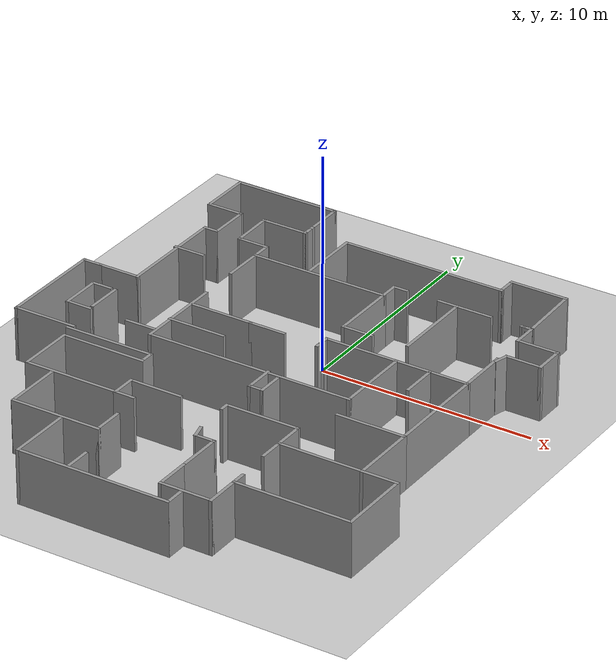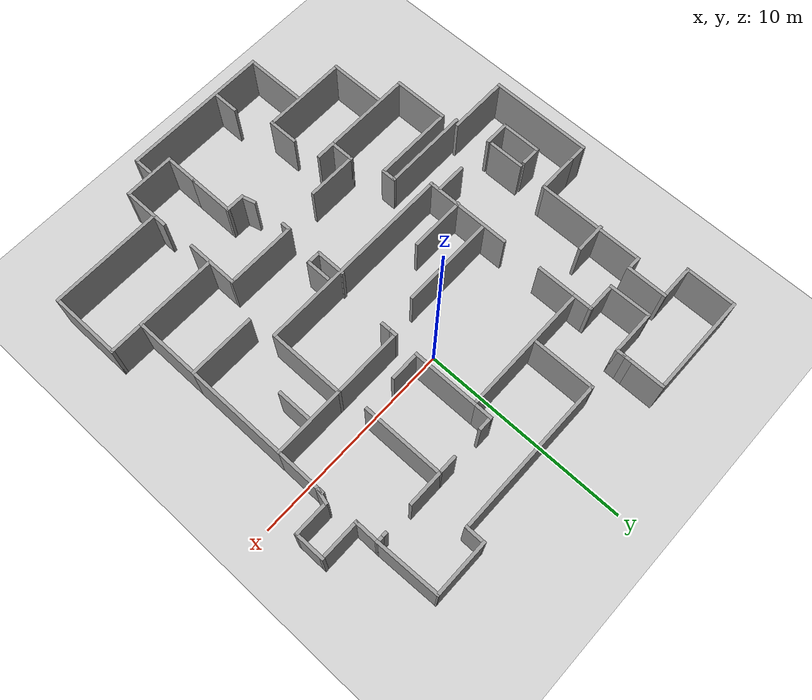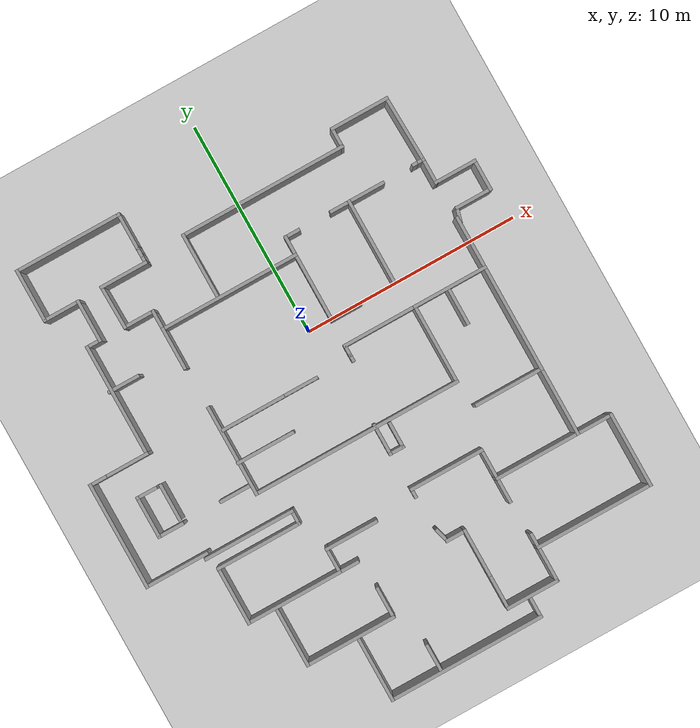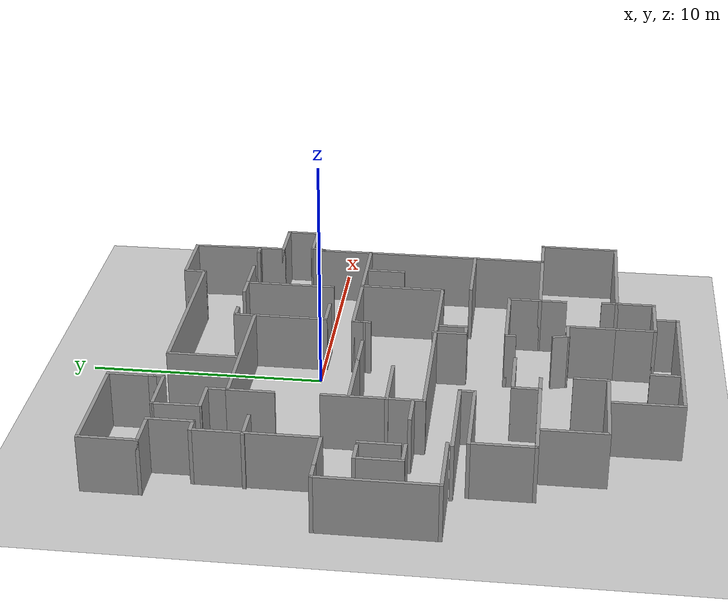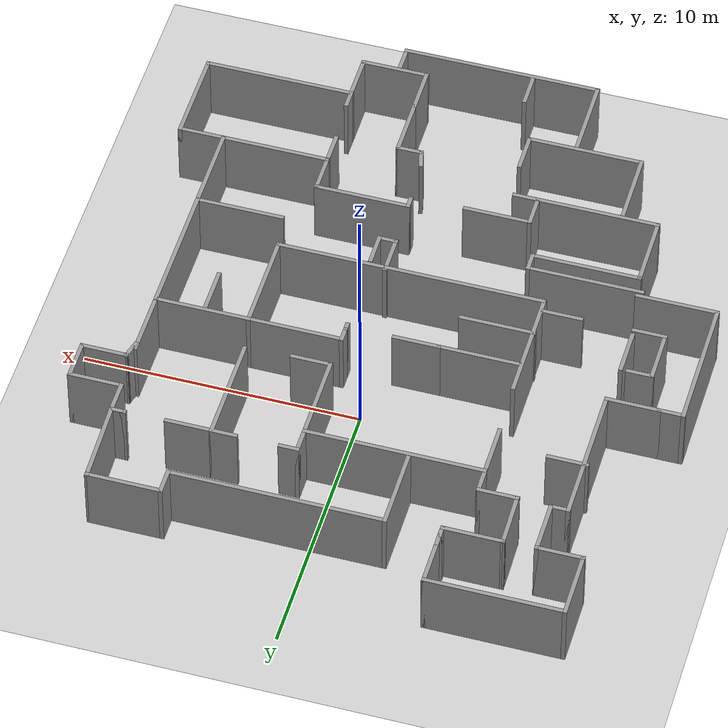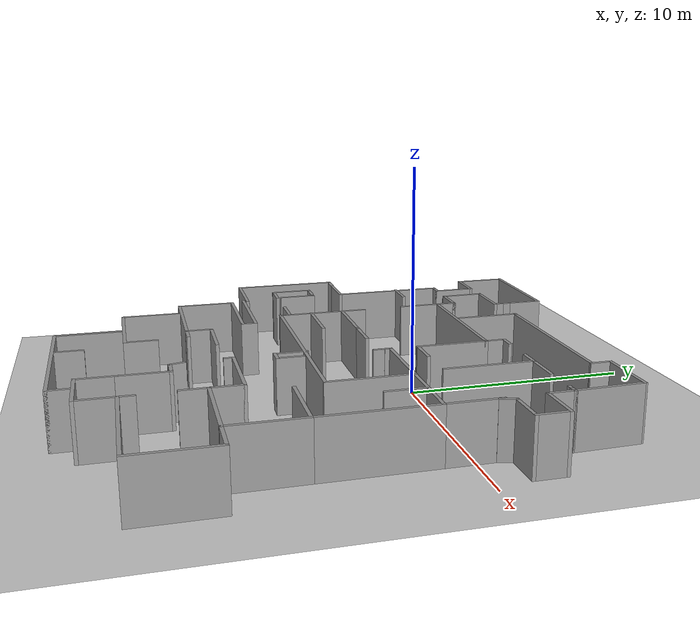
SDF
<sdf version="1.6">
 <world name="default">
  <model name="ground_plane">
   <static>1</static>
   <link name="link">
    <collision name="collision">
     <geometry><plane><normal>0 0 1</normal><size>100 100</size></plane></geometry>
     <surface>
      <contact><collide_bitmask>65535</collide_bitmask></contact>
      <friction><ode><mu>100</mu><mu2>50</mu2></ode></friction>
     </surface>
    </collision>
    <visual name="visual">
     <cast_shadows>0</cast_shadows>
     <geometry><plane><normal>0 0 1</normal><size>100 100</size></plane></geometry>
     <material>
      <script><uri>file://media/materials/scripts/gazebo.material</uri><name>Gazebo/Grey</name></script>
     </material>
    </visual>
   </link>
  </model>
  <model name="3_robot_house">
   <pose>-0.790707 -3.5377 0 0 -0 0</pose>
   <link name="Wall_10">
    <collision name="Wall_10_Collision">
     <geometry><box><size>3.5 0.15 2.5</size></box></geometry>
     <pose>0 0 1.25 0 -0 0</pose>
    </collision>
    <visual name="Wall_10_Visual">
     <pose>0 0 1.25 0 -0 0</pose>
     <geometry><box><size>3.5 0.15 2.5</size></box></geometry>
     <material>
      <script><uri>file://media/materials/scripts/gazebo.material</uri><name>Gazebo/Grey</name></script>
      <ambient>1 1 1 1</ambient>
     </material>
     <meta><layer>0</layer></meta>
    </visual>
    <pose>6.84229 2.24276 0 0 -0 0</pose>
   </link>
   <link name="Wall_100">
    <collision name="Wall_100_Collision">
     <geometry><box><size>1.75 0.15 2.5</size></box></geometry>
     <pose>0 0 1.25 0 -0 0</pose>
    </collision>
    <visual name="Wall_100_Visual">
     <pose>0 0 1.25 0 -0 0</pose>
     <geometry><box><size>1.75 0.15 2.5</size></box></geometry>
     <material>
      <script><uri>file://media/materials/scripts/gazebo.material</uri><name>Gazebo/Grey</name></script>
      <ambient>1 1 1 1</ambient>
     </material>
     <meta><layer>0</layer></meta>
    </visual>
    <pose>-7.81312 9.28629 0 0 -0 3.14159</pose>
   </link>
   <link name="Wall_101">
    <collision name="Wall_101_Collision">
     <geometry><box><size>2.5 0.15 2.5</size></box></geometry>
     <pose>0 0 1.25 0 -0 0</pose>
    </collision>
    <visual name="Wall_101_Visual">
     <pose>0 0 1.25 0 -0 0</pose>
     <geometry><box><size>2.5 0.15 2.5</size></box></geometry>
     <material>
      <script><uri>file://media/materials/scripts/gazebo.material</uri><name>Gazebo/Grey</name></script>
      <ambient>1 1 1 1</ambient>
     </material>
     <meta><layer>0</layer></meta>
    </visual>
    <pose>-8.61312 10.4613 0 0 -0 1.5708</pose>
   </link>
   <link name="Wall_102">
    <collision name="Wall_102_Collision">
     <geometry><box><size>5 0.15 2.5</size></box></geometry>
     <pose>0 0 1.25 0 -0 0</pose>
    </collision>
    <visual name="Wall_102_Visual">
     <pose>0 0 1.25 0 -0 0</pose>
     <geometry><box><size>5 0.15 2.5</size></box></geometry>
     <material>
      <script><uri>file://media/materials/scripts/gazebo.material</uri><name>Gazebo/Grey</name></script>
      <ambient>1 1 1 1</ambient>
     </material>
     <meta><layer>0</layer></meta>
    </visual>
    <pose>-6.18812 11.6363 0 0 -0 0</pose>
   </link>
   <link name="Wall_103">
    <collision name="Wall_103_Collision">
     <geometry><box><size>1.75 0.15 2.5</size></box></geometry>
     <pose>0 0 1.25 0 -0 0</pose>
    </collision>
    <visual name="Wall_103_Visual">
     <pose>0 0 1.25 0 -0 0</pose>
     <geometry><box><size>1.75 0.15 2.5</size></box></geometry>
     <material>
      <script><uri>file://media/materials/scripts/gazebo.material</uri><name>Gazebo/Grey</name></script>
      <ambient>1 1 1 1</ambient>
     </material>
     <meta><layer>0</layer></meta>
    </visual>
    <pose>-3.76312 10.8363 0 0 -0 -1.5708</pose>
   </link>
   <link name="Wall_104">
    <collision name="Wall_104_Collision">
     <geometry><box><size>0.5 0.15 2.5</size></box></geometry>
     <pose>0 0 1.25 0 -0 0</pose>
    </collision>
    <visual name="Wall_104_Visual">
     <pose>0 0 1.25 0 -0 0</pose>
     <geometry><box><size>0.5 0.15 2.5</size></box></geometry>
     <material>
      <script><uri>file://media/materials/scripts/gazebo.material</uri><name>Gazebo/Grey</name></script>
      <ambient>1 1 1 1</ambient>
     </material>
     <meta><layer>0</layer></meta>
    </visual>
    <pose>-3.76312 9.86129 0 0 -0 -1.5708</pose>
   </link>
   <link name="Wall_105">
    <collision name="Wall_105_Collision">
     <geometry><box><size>0.5 0.15 2.5</size></box></geometry>
     <pose>0 0 1.25 0 -0 0</pose>
    </collision>
    <visual name="Wall_105_Visual">
     <pose>0 0 1.25 0 -0 0</pose>
     <geometry><box><size>0.5 0.15 2.5</size></box></geometry>
     <material>
      <script><uri>file://media/materials/scripts/gazebo.material</uri><name>Gazebo/Grey</name></script>
      <ambient>1 1 1 1</ambient>
     </material>
     <meta><layer>0</layer></meta>
    </visual>
    <pose>-3.76312 9.51129 0 0 -0 -1.5708</pose>
   </link>
   <link name="Wall_106">
    <collision name="Wall_106_Collision">
     <geometry><box><size>2.25 0.15 2.5</size></box></geometry>
     <pose>0 0 1.25 0 -0 0</pose>
    </collision>
    <visual name="Wall_106_Visual">
     <pose>0 0 1.25 0 -0 0</pose>
     <geometry><box><size>2.25 0.15 2.5</size></box></geometry>
     <material>
      <script><uri>file://media/materials/scripts/gazebo.material</uri><name>Gazebo/Grey</name></script>
      <ambient>1 1 1 1</ambient>
     </material>
     <meta><layer>0</layer></meta>
    </visual>
    <pose>-4.81312 9.33629 0 0 -0 3.14159</pose>
   </link>
   <link name="Wall_107">
    <collision name="Wall_107_Collision">
     <geometry><box><size>2.08097 0.15 2.5</size></box></geometry>
     <pose>0 0 1.25 0 -0 0</pose>
    </collision>
    <visual name="Wall_107_Visual">
     <pose>0 0 1.25 0 -0 0</pose>
     <geometry><box><size>2.08097 0.15 2.5</size></box></geometry>
     <material>
      <script><uri>file://media/materials/scripts/gazebo.material</uri><name>Gazebo/Grey</name></script>
      <ambient>1 1 1 1</ambient>
     </material>
     <meta><layer>0</layer></meta>
    </visual>
    <pose>-5.84716 8.37094 0 0 -0 -1.55427</pose>
   </link>
   <link name="Wall_11">
    <collision name="Wall_11_Collision">
     <geometry><box><size>5 0.15 2.5</size></box></geometry>
     <pose>0 0 1.25 0 -0 0</pose>
    </collision>
    <visual name="Wall_11_Visual">
     <pose>0 0 1.25 0 -0 0</pose>
     <geometry><box><size>5 0.15 2.5</size></box></geometry>
     <material>
      <script><uri>file://media/materials/scripts/gazebo.material</uri><name>Gazebo/Grey</name></script>
      <ambient>1 1 1 1</ambient>
     </material>
     <meta><layer>0</layer></meta>
    </visual>
    <pose>8.51729 -0.182235 0 0 -0 -1.5708</pose>
   </link>
   <link name="Wall_110">
    <collision name="Wall_110_Collision">
     <geometry><box><size>3 0.15 2.5</size></box></geometry>
     <pose>0 0 1.25 0 -0 0</pose>
    </collision>
    <visual name="Wall_110_Visual">
     <pose>0 0 1.25 0 -0 0</pose>
     <geometry><box><size>3 0.15 2.5</size></box></geometry>
     <material>
      <script><uri>file://media/materials/scripts/gazebo.material</uri><name>Gazebo/Grey</name></script>
      <ambient>1 1 1 1</ambient>
     </material>
     <meta><layer>0</layer></meta>
    </visual>
    <pose>-1.82806 8.13443 0 0 -0 1.5708</pose>
   </link>
   <link name="Wall_111">
    <collision name="Wall_111_Collision">
     <geometry><box><size>7.75 0.15 2.5</size></box></geometry>
     <pose>0 0 1.25 0 -0 0</pose>
    </collision>
    <visual name="Wall_111_Visual">
     <pose>0 0 1.25 0 -0 0</pose>
     <geometry><box><size>7.75 0.15 2.5</size></box></geometry>
     <material>
      <script><uri>file://media/materials/scripts/gazebo.material</uri><name>Gazebo/Grey</name></script>
      <ambient>1 1 1 1</ambient>
     </material>
     <meta><layer>0</layer></meta>
    </visual>
    <pose>1.97194 9.55943 0 0 -0 0</pose>
   </link>
   <link name="Wall_112">
    <collision name="Wall_112_Collision">
     <geometry><box><size>1 0.15 2.5</size></box></geometry>
     <pose>0 0 1.25 0 -0 0</pose>
    </collision>
    <visual name="Wall_112_Visual">
     <pose>0 0 1.25 0 -0 0</pose>
     <geometry><box><size>1 0.15 2.5</size></box></geometry>
     <material>
      <script><uri>file://media/materials/scripts/gazebo.material</uri><name>Gazebo/Grey</name></script>
      <ambient>1 1 1 1</ambient>
     </material>
     <meta><layer>0</layer></meta>
    </visual>
    <pose>5.77194 9.98443 0 0 -0 1.5708</pose>
   </link>
   <link name="Wall_113">
    <collision name="Wall_113_Collision">
     <geometry><box><size>2.75 0.15 2.5</size></box></geometry>
     <pose>0 0 1.25 0 -0 0</pose>
    </collision>
    <visual name="Wall_113_Visual">
     <pose>0 0 1.25 0 -0 0</pose>
     <geometry><box><size>2.75 0.15 2.5</size></box></geometry>
     <material>
      <script><uri>file://media/materials/scripts/gazebo.material</uri><name>Gazebo/Grey</name></script>
      <ambient>1 1 1 1</ambient>
     </material>
     <meta><layer>0</layer></meta>
    </visual>
    <pose>7.07194 10.4094 0 0 -0 0</pose>
   </link>
   <link name="Wall_114">
    <collision name="Wall_114_Collision">
     <geometry><box><size>3.12453 0.15 2.5</size></box></geometry>
     <pose>0 0 1.25 0 -0 0</pose>
    </collision>
    <visual name="Wall_114_Visual">
     <pose>0 0 1.25 0 -0 0</pose>
     <geometry><box><size>3.12453 0.15 2.5</size></box></geometry>
     <material>
      <script><uri>file://media/materials/scripts/gazebo.material</uri><name>Gazebo/Grey</name></script>
      <ambient>1 1 1 1</ambient>
     </material>
     <meta><layer>0</layer></meta>
    </visual>
    <pose>8.41753 8.92286 0 0 -0 -1.54014</pose>
   </link>
   <link name="Wall_116">
    <collision name="Wall_116_Collision">
     <geometry><box><size>2.75 0.15 2.5</size></box></geometry>
     <pose>0 0 1.25 0 -0 0</pose>
    </collision>
    <visual name="Wall_116_Visual">
     <pose>0 0 1.25 0 -0 0</pose>
     <geometry><box><size>2.75 0.15 2.5</size></box></geometry>
     <material>
      <script><uri>file://media/materials/scripts/gazebo.material</uri><name>Gazebo/Grey</name></script>
      <ambient>1 1 1 1</ambient>
     </material>
     <meta><layer>0</layer></meta>
    </visual>
    <pose>-3.16495 0.140335 0 0 -0 0</pose>
   </link>
   <link name="Wall_118">
    <collision name="Wall_118_Collision">
     <geometry><box><size>1.5 0.15 2.5</size></box></geometry>
     <pose>0 0 1.25 0 -0 0</pose>
    </collision>
    <visual name="Wall_118_Visual">
     <pose>0 0 1.25 0 -0 0</pose>
     <geometry><box><size>1.5 0.15 2.5</size></box></geometry>
     <material>
      <script><uri>file://media/materials/scripts/gazebo.material</uri><name>Gazebo/Grey</name></script>
      <ambient>1 1 1 1</ambient>
     </material>
     <meta><layer>0</layer></meta>
    </visual>
    <pose>-7.03744 5.35622 0 0 -0 0</pose>
   </link>
   <link name="Wall_12">
    <collision name="Wall_12_Collision">
     <geometry><box><size>3.25 0.15 2.5</size></box></geometry>
     <pose>0 0 1.25 0 -0 0</pose>
    </collision>
    <visual name="Wall_12_Visual">
     <pose>0 0 1.25 0 -0 0</pose>
     <geometry><box><size>3.25 0.15 2.5</size></box></geometry>
     <material>
      <script><uri>file://media/materials/scripts/gazebo.material</uri><name>Gazebo/Grey</name></script>
      <ambient>1 1 1 1</ambient>
     </material>
     <meta><layer>0</layer></meta>
    </visual>
    <pose>6.96729 -2.60723 0 0 -0 3.14159</pose>
   </link>
   <link name="Wall_120">
    <collision name="Wall_120_Collision">
     <geometry><box><size>1.5 0.15 2.5</size></box></geometry>
     <pose>0 0 1.25 0 -0 0</pose>
    </collision>
    <visual name="Wall_120_Visual">
     <pose>0 0 1.25 0 -0 0</pose>
     <geometry><box><size>1.5 0.15 2.5</size></box></geometry>
     <material>
      <script><uri>file://media/materials/scripts/gazebo.material</uri><name>Gazebo/Grey</name></script>
      <ambient>1 1 1 1</ambient>
     </material>
     <meta><layer>0</layer></meta>
    </visual>
    <pose>-5.19542 -0.921429 0 0 -0 3.14159</pose>
   </link>
   <link name="Wall_123">
    <collision name="Wall_123_Collision">
     <geometry><box><size>1.75 0.15 2.5</size></box></geometry>
     <pose>0 0 1.25 0 -0 0</pose>
    </collision>
    <visual name="Wall_123_Visual">
     <pose>0 0 1.25 0 -0 0</pose>
     <geometry><box><size>1.75 0.15 2.5</size></box></geometry>
     <material>
      <script><uri>file://media/materials/scripts/gazebo.material</uri><name>Gazebo/Grey</name></script>
      <ambient>1 1 1 1</ambient>
     </material>
     <meta><layer>0</layer></meta>
    </visual>
    <pose>6.75807 1.36419 0 0 -0 -1.5708</pose>
   </link>
   <link name="Wall_125">
    <collision name="Wall_125_Collision">
     <geometry><box><size>1.25 0.15 2.5</size></box></geometry>
     <pose>0 0 1.25 0 -0 0</pose>
    </collision>
    <visual name="Wall_125_Visual">
     <pose>0 0 1.25 0 -0 0</pose>
     <geometry><box><size>1.25 0.15 2.5</size></box></geometry>
     <material>
      <script><uri>file://media/materials/scripts/gazebo.material</uri><name>Gazebo/Grey</name></script>
      <ambient>1 1 1 1</ambient>
     </material>
     <meta><layer>0</layer></meta>
    </visual>
    <pose>-1.30031 -10.9461 0 0 -0 1.5708</pose>
   </link>
   <link name="Wall_127">
    <collision name="Wall_127_Collision">
     <geometry><box><size>1.5 0.15 2.5</size></box></geometry>
     <pose>0 0 1.25 0 -0 0</pose>
    </collision>
    <visual name="Wall_127_Visual">
     <pose>0 0 1.25 0 -0 0</pose>
     <geometry><box><size>1.5 0.15 2.5</size></box></geometry>
     <material>
      <script><uri>file://media/materials/scripts/gazebo.material</uri><name>Gazebo/Grey</name></script>
      <ambient>1 1 1 1</ambient>
     </material>
     <meta><layer>0</layer></meta>
    </visual>
    <pose>1.26927 -1.95397 0 0 -0 -1.5708</pose>
   </link>
   <link name="Wall_128">
    <collision name="Wall_128_Collision">
     <geometry><box><size>0.75 0.15 2.5</size></box></geometry>
     <pose>0 0 1.25 0 -0 0</pose>
    </collision>
    <visual name="Wall_128_Visual">
     <pose>0 0 1.25 0 -0 0</pose>
     <geometry><box><size>0.75 0.15 2.5</size></box></geometry>
     <material>
      <script><uri>file://media/materials/scripts/gazebo.material</uri><name>Gazebo/Grey</name></script>
      <ambient>1 1 1 1</ambient>
     </material>
     <meta><layer>0</layer></meta>
    </visual>
    <pose>1.56927 -2.62897 0 0 -0 0</pose>
   </link>
   <link name="Wall_129">
    <collision name="Wall_129_Collision">
     <geometry><box><size>1.25 0.15 2.5</size></box></geometry>
     <pose>0 0 1.25 0 -0 0</pose>
    </collision>
    <visual name="Wall_129_Visual">
     <pose>0 0 1.25 0 -0 0</pose>
     <geometry><box><size>1.25 0.15 2.5</size></box></geometry>
     <material>
      <script><uri>file://media/materials/scripts/gazebo.material</uri><name>Gazebo/Grey</name></script>
      <ambient>1 1 1 1</ambient>
     </material>
     <meta><layer>0</layer></meta>
    </visual>
    <pose>1.86927 -2.07897 0 0 -0 1.5708</pose>
   </link>
   <link name="Wall_131">
    <collision name="Wall_131_Collision">
     <geometry><box><size>2 0.15 2.5</size></box></geometry>
     <pose>0 0 1.25 0 -0 0</pose>
    </collision>
    <visual name="Wall_131_Visual">
     <pose>0 0 1.25 0 -0 0</pose>
     <geometry><box><size>2 0.15 2.5</size></box></geometry>
     <material>
      <script><uri>file://media/materials/scripts/gazebo.material</uri><name>Gazebo/Grey</name></script>
      <ambient>1 1 1 1</ambient>
     </material>
     <meta><layer>0</layer></meta>
    </visual>
    <pose>9.38812 6.33629 0 0 -0 0</pose>
   </link>
   <link name="Wall_132">
    <collision name="Wall_132_Collision">
     <geometry><box><size>1.5 0.15 2.5</size></box></geometry>
     <pose>0 0 1.25 0 -0 0</pose>
    </collision>
    <visual name="Wall_132_Visual">
     <pose>0 0 1.25 0 -0 0</pose>
     <geometry><box><size>1.5 0.15 2.5</size></box></geometry>
     <material>
      <script><uri>file://media/materials/scripts/gazebo.material</uri><name>Gazebo/Grey</name></script>
      <ambient>1 1 1 1</ambient>
     </material>
     <meta><layer>0</layer></meta>
    </visual>
    <pose>10.3131 5.66129 0 0 -0 -1.5708</pose>
   </link>
   <link name="Wall_133">
    <collision name="Wall_133_Collision">
     <geometry><box><size>1.75 0.15 2.5</size></box></geometry>
     <pose>0 0 1.25 0 -0 0</pose>
    </collision>
    <visual name="Wall_133_Visual">
     <pose>0 0 1.25 0 -0 0</pose>
     <geometry><box><size>1.75 0.15 2.5</size></box></geometry>
     <material>
      <script><uri>file://media/materials/scripts/gazebo.material</uri><name>Gazebo/Grey</name></script>
      <ambient>1 1 1 1</ambient>
     </material>
     <meta><layer>0</layer></meta>
    </visual>
    <pose>9.51312 4.98629 0 0 -0 3.14159</pose>
   </link>
   <link name="Wall_134">
    <collision name="Wall_134_Collision">
     <geometry><box><size>0.75 0.15 2.5</size></box></geometry>
     <pose>0 0 1.25 0 -0 0</pose>
    </collision>
    <visual name="Wall_134_Visual">
     <pose>0 0 1.25 0 -0 0</pose>
     <geometry><box><size>0.75 0.15 2.5</size></box></geometry>
     <material>
      <script><uri>file://media/materials/scripts/gazebo.material</uri><name>Gazebo/Grey</name></script>
      <ambient>1 1 1 1</ambient>
     </material>
     <meta><layer>0</layer></meta>
    </visual>
    <pose>8.63548 4.69651 0 0 -0 -1.8326</pose>
   </link>
   <link name="Wall_136">
    <collision name="Wall_136_Collision">
     <geometry><box><size>2 0.15 2.5</size></box></geometry>
     <pose>0 0 1.25 0 -0 0</pose>
    </collision>
    <visual name="Wall_136_Visual">
     <pose>0 0 1.25 0 -0 0</pose>
     <geometry><box><size>2 0.15 2.5</size></box></geometry>
     <material>
      <script><uri>file://media/materials/scripts/gazebo.material</uri><name>Gazebo/Grey</name></script>
      <ambient>1 1 1 1</ambient>
     </material>
     <meta><layer>0</layer></meta>
    </visual>
    <pose>-8.53812 2.33629 0 0 -0 3.14159</pose>
   </link>
   <link name="Wall_137">
    <collision name="Wall_137_Collision">
     <geometry><box><size>1 0.15 2.5</size></box></geometry>
     <pose>0 0 1.25 0 -0 0</pose>
    </collision>
    <visual name="Wall_137_Visual">
     <pose>0 0 1.25 0 -0 0</pose>
     <geometry><box><size>1 0.15 2.5</size></box></geometry>
     <material>
      <script><uri>file://media/materials/scripts/gazebo.material</uri><name>Gazebo/Grey</name></script>
      <ambient>1 1 1 1</ambient>
     </material>
     <meta><layer>0</layer></meta>
    </visual>
    <pose>-9.88812 2.33629 0 0 -0 3.14159</pose>
   </link>
   <link name="Wall_138">
    <collision name="Wall_138_Collision">
     <geometry><box><size>5 0.15 2.5</size></box></geometry>
     <pose>0 0 1.25 0 -0 0</pose>
    </collision>
    <visual name="Wall_138_Visual">
     <pose>0 0 1.25 0 -0 0</pose>
     <geometry><box><size>5 0.15 2.5</size></box></geometry>
     <material>
      <script><uri>file://media/materials/scripts/gazebo.material</uri><name>Gazebo/Grey</name></script>
      <ambient>1 1 1 1</ambient>
     </material>
     <meta><layer>0</layer></meta>
    </visual>
    <pose>-10.3131 -0.088708 0 0 -0 -1.5708</pose>
   </link>
   <link name="Wall_139">
    <collision name="Wall_139_Collision">
     <geometry><box><size>3 0.15 2.5</size></box></geometry>
     <pose>0 0 1.25 0 -0 0</pose>
    </collision>
    <visual name="Wall_139_Visual">
     <pose>0 0 1.25 0 -0 0</pose>
     <geometry><box><size>3 0.15 2.5</size></box></geometry>
     <material>
      <script><uri>file://media/materials/scripts/gazebo.material</uri><name>Gazebo/Grey</name></script>
      <ambient>1 1 1 1</ambient>
     </material>
     <meta><layer>0</layer></meta>
    </visual>
    <pose>-8.88812 -2.51371 0 0 -0 0</pose>
   </link>
   <link name="Wall_14">
    <collision name="Wall_14_Collision">
     <geometry><box><size>2 0.15 2.5</size></box></geometry>
     <pose>0 0 1.25 0 -0 0</pose>
    </collision>
    <visual name="Wall_14_Visual">
     <pose>0 0 1.25 0 -0 0</pose>
     <geometry><box><size>2 0.15 2.5</size></box></geometry>
     <material>
      <script><uri>file://media/materials/scripts/gazebo.material</uri><name>Gazebo/Grey</name></script>
      <ambient>1 1 1 1</ambient>
     </material>
     <meta><layer>0</layer></meta>
    </visual>
    <pose>-4.4812 5.63059 0 0 -0 1.5708</pose>
   </link>
   <link name="Wall_141">
    <collision name="Wall_141_Collision">
     <geometry><box><size>1.75 0.15 2.5</size></box></geometry>
     <pose>0 0 1.25 0 -0 0</pose>
    </collision>
    <visual name="Wall_141_Visual">
     <pose>0 0 1.25 0 -0 0</pose>
     <geometry><box><size>1.75 0.15 2.5</size></box></geometry>
     <material>
      <script><uri>file://media/materials/scripts/gazebo.material</uri><name>Gazebo/Grey</name></script>
      <ambient>1 1 1 1</ambient>
     </material>
     <meta><layer>0</layer></meta>
    </visual>
    <pose>-7.74892 0.090357 0 0 -0 -1.5708</pose>
   </link>
   <link name="Wall_143">
    <collision name="Wall_143_Collision">
     <geometry><box><size>1 0.15 2.5</size></box></geometry>
     <pose>0 0 1.25 0 -0 0</pose>
    </collision>
    <visual name="Wall_143_Visual">
     <pose>0 0 1.25 0 -0 0</pose>
     <geometry><box><size>1 0.15 2.5</size></box></geometry>
     <material>
      <script><uri>file://media/materials/scripts/gazebo.material</uri><name>Gazebo/Grey</name></script>
      <ambient>1 1 1 1</ambient>
     </material>
     <meta><layer>0</layer></meta>
    </visual>
    <pose>-8.42629 0.91147 0 0 -0 3.14159</pose>
   </link>
   <link name="Wall_144">
    <collision name="Wall_144_Collision">
     <geometry><box><size>2 0.15 2.5</size></box></geometry>
     <pose>0 0 1.25 0 -0 0</pose>
    </collision>
    <visual name="Wall_144_Visual">
     <pose>0 0 1.25 0 -0 0</pose>
     <geometry><box><size>2 0.15 2.5</size></box></geometry>
     <material>
      <script><uri>file://media/materials/scripts/gazebo.material</uri><name>Gazebo/Grey</name></script>
      <ambient>1 1 1 1</ambient>
     </material>
     <meta><layer>0</layer></meta>
    </visual>
    <pose>-8.85129 -0.01353 0 0 -0 -1.5708</pose>
   </link>
   <link name="Wall_145">
    <collision name="Wall_145_Collision">
     <geometry><box><size>1.25 0.15 2.5</size></box></geometry>
     <pose>0 0 1.25 0 -0 0</pose>
    </collision>
    <visual name="Wall_145_Visual">
     <pose>0 0 1.25 0 -0 0</pose>
     <geometry><box><size>1.25 0.15 2.5</size></box></geometry>
     <material>
      <script><uri>file://media/materials/scripts/gazebo.material</uri><name>Gazebo/Grey</name></script>
      <ambient>1 1 1 1</ambient>
     </material>
     <meta><layer>0</layer></meta>
    </visual>
    <pose>-8.30129 -0.93853 0 0 -0 0</pose>
   </link>
   <link name="Wall_15">
    <collision name="Wall_15_Collision">
     <geometry><box><size>6.5 0.15 2.5</size></box></geometry>
     <pose>0 0 1.25 0 -0 0</pose>
    </collision>
    <visual name="Wall_15_Visual">
     <pose>0 0 1.25 0 -0 0</pose>
     <geometry><box><size>6.5 0.15 2.5</size></box></geometry>
     <material>
      <script><uri>file://media/materials/scripts/gazebo.material</uri><name>Gazebo/Grey</name></script>
      <ambient>1 1 1 1</ambient>
     </material>
     <meta><layer>0</layer></meta>
    </visual>
    <pose>-1.3062 6.55559 0 0 -0 0</pose>
   </link>
   <link name="Wall_16">
    <collision name="Wall_16_Collision">
     <geometry><box><size>1 0.15 2.5</size></box></geometry>
     <pose>0 0 1.25 0 -0 0</pose>
    </collision>
    <visual name="Wall_16_Visual">
     <pose>0 0 1.25 0 -0 0</pose>
     <geometry><box><size>1 0.15 2.5</size></box></geometry>
     <material>
      <script><uri>file://media/materials/scripts/gazebo.material</uri><name>Gazebo/Grey</name></script>
      <ambient>1 1 1 1</ambient>
     </material>
     <meta><layer>0</layer></meta>
    </visual>
    <pose>1.8688 6.98059 0 0 -0 1.5708</pose>
   </link>
   <link name="Wall_17">
    <collision name="Wall_17_Collision">
     <geometry><box><size>0.75 0.15 2.5</size></box></geometry>
     <pose>0 0 1.25 0 -0 0</pose>
    </collision>
    <visual name="Wall_17_Visual">
     <pose>0 0 1.25 0 -0 0</pose>
     <geometry><box><size>0.75 0.15 2.5</size></box></geometry>
     <material>
      <script><uri>file://media/materials/scripts/gazebo.material</uri><name>Gazebo/Grey</name></script>
      <ambient>1 1 1 1</ambient>
     </material>
     <meta><layer>0</layer></meta>
    </visual>
    <pose>2.1688 7.40559 0 0 -0 0</pose>
   </link>
   <link name="Wall_22">
    <collision name="Wall_22_Collision">
     <geometry><box><size>1 0.15 2.5</size></box></geometry>
     <pose>0 0 1.25 0 -0 0</pose>
    </collision>
    <visual name="Wall_22_Visual">
     <pose>0 0 1.25 0 -0 0</pose>
     <geometry><box><size>1 0.15 2.5</size></box></geometry>
     <material>
      <script><uri>file://media/materials/scripts/gazebo.material</uri><name>Gazebo/Grey</name></script>
      <ambient>1 1 1 1</ambient>
     </material>
     <meta><layer>0</layer></meta>
    </visual>
    <pose>4.48385 7.40587 0 0 -0 0</pose>
   </link>
   <link name="Wall_23">
    <collision name="Wall_23_Collision">
     <geometry><box><size>4 0.15 2.5</size></box></geometry>
     <pose>0 0 1.25 0 -0 0</pose>
    </collision>
    <visual name="Wall_23_Visual">
     <pose>0 0 1.25 0 -0 0</pose>
     <geometry><box><size>4 0.15 2.5</size></box></geometry>
     <material>
      <script><uri>file://media/materials/scripts/gazebo.material</uri><name>Gazebo/Grey</name></script>
      <ambient>1 1 1 1</ambient>
     </material>
     <meta><layer>0</layer></meta>
    </visual>
    <pose>4.90885 5.48087 0 0 -0 -1.5708</pose>
   </link>
   <link name="Wall_25">
    <collision name="Wall_25_Collision">
     <geometry><box><size>1.75 0.15 2.5</size></box></geometry>
     <pose>0 0 1.25 0 -0 0</pose>
    </collision>
    <visual name="Wall_25_Visual">
     <pose>0 0 1.25 0 -0 0</pose>
     <geometry><box><size>1.75 0.15 2.5</size></box></geometry>
     <material>
      <script><uri>file://media/materials/scripts/gazebo.material</uri><name>Gazebo/Grey</name></script>
      <ambient>1 1 1 1</ambient>
     </material>
     <meta><layer>0</layer></meta>
    </visual>
    <pose>5.70885 7.40587 0 0 -0 0</pose>
   </link>
   <link name="Wall_27">
    <collision name="Wall_27_Collision">
     <geometry><box><size>0.25 0.15 2.5</size></box></geometry>
     <pose>0 0 1.25 0 -0 0</pose>
    </collision>
    <visual name="Wall_27_Visual">
     <pose>0 0 1.25 0 -0 0</pose>
     <geometry><box><size>0.25 0.15 2.5</size></box></geometry>
     <material>
      <script><uri>file://media/materials/scripts/gazebo.material</uri><name>Gazebo/Grey</name></script>
      <ambient>1 1 1 1</ambient>
     </material>
     <meta><layer>0</layer></meta>
    </visual>
    <pose>8.06312 7.43629 0 0 -0 0</pose>
   </link>
   <link name="Wall_28">
    <collision name="Wall_28_Collision">
     <geometry><box><size>0.5 0.15 2.5</size></box></geometry>
     <pose>0 0 1.25 0 -0 0</pose>
    </collision>
    <visual name="Wall_28_Visual">
     <pose>0 0 1.25 0 -0 0</pose>
     <geometry><box><size>0.5 0.15 2.5</size></box></geometry>
     <material>
      <script><uri>file://media/materials/scripts/gazebo.material</uri><name>Gazebo/Grey</name></script>
      <ambient>1 1 1 1</ambient>
     </material>
     <meta><layer>0</layer></meta>
    </visual>
    <pose>8.28812 7.43629 0 0 -0 0</pose>
   </link>
   <link name="Wall_29">
    <collision name="Wall_29_Collision">
     <geometry><box><size>1.25 0.15 2.5</size></box></geometry>
     <pose>0 0 1.25 0 -0 0</pose>
    </collision>
    <visual name="Wall_29_Visual">
     <pose>0 0 1.25 0 -0 0</pose>
     <geometry><box><size>1.25 0.15 2.5</size></box></geometry>
     <material>
      <script><uri>file://media/materials/scripts/gazebo.material</uri><name>Gazebo/Grey</name></script>
      <ambient>1 1 1 1</ambient>
     </material>
     <meta><layer>0</layer></meta>
    </visual>
    <pose>8.46312 6.88629 0 0 -0 -1.5708</pose>
   </link>
   <link name="Wall_3">
    <collision name="Wall_3_Collision">
     <geometry><box><size>1.75 0.15 2.5</size></box></geometry>
     <pose>0 0 1.25 0 -0 0</pose>
    </collision>
    <visual name="Wall_3_Visual">
     <pose>0 0 1.25 0 -0 0</pose>
     <geometry><box><size>1.75 0.15 2.5</size></box></geometry>
     <material>
      <script><uri>file://media/materials/scripts/gazebo.material</uri><name>Gazebo/Grey</name></script>
      <ambient>1 1 1 1</ambient>
     </material>
     <meta><layer>0</layer></meta>
    </visual>
    <pose>-0.688706 1.64962 0 0 -0 3.14159</pose>
   </link>
   <link name="Wall_31">
    <collision name="Wall_31_Collision">
     <geometry><box><size>2.5 0.15 2.5</size></box></geometry>
     <pose>0 0 1.25 0 -0 0</pose>
    </collision>
    <visual name="Wall_31_Visual">
     <pose>0 0 1.25 0 -0 0</pose>
     <geometry><box><size>2.5 0.15 2.5</size></box></geometry>
     <material>
      <script><uri>file://media/materials/scripts/gazebo.material</uri><name>Gazebo/Grey</name></script>
      <ambient>1 1 1 1</ambient>
     </material>
     <meta><layer>0</layer></meta>
    </visual>
    <pose>8.51729 3.41777 0 0 -0 1.5708</pose>
   </link>
   <link name="Wall_33">
    <collision name="Wall_33_Collision">
     <geometry><box><size>3.25 0.15 2.5</size></box></geometry>
     <pose>0 0 1.25 0 -0 0</pose>
    </collision>
    <visual name="Wall_33_Visual">
     <pose>0 0 1.25 0 -0 0</pose>
     <geometry><box><size>3.25 0.15 2.5</size></box></geometry>
     <material>
      <script><uri>file://media/materials/scripts/gazebo.material</uri><name>Gazebo/Grey</name></script>
      <ambient>1 1 1 1</ambient>
     </material>
     <meta><layer>0</layer></meta>
    </visual>
    <pose>1.8688 5.00559 0 0 -0 -1.5708</pose>
   </link>
   <link name="Wall_34">
    <collision name="Wall_34_Collision">
     <geometry><box><size>1.5 0.15 2.5</size></box></geometry>
     <pose>0 0 1.25 0 -0 0</pose>
    </collision>
    <visual name="Wall_34_Visual">
     <pose>0 0 1.25 0 -0 0</pose>
     <geometry><box><size>1.5 0.15 2.5</size></box></geometry>
     <material>
      <script><uri>file://media/materials/scripts/gazebo.material</uri><name>Gazebo/Grey</name></script>
      <ambient>1 1 1 1</ambient>
     </material>
     <meta><layer>0</layer></meta>
    </visual>
    <pose>2.5438 3.45559 0 0 -0 0</pose>
   </link>
   <link name="Wall_36">
    <collision name="Wall_36_Collision">
     <geometry><box><size>3.5 0.15 2.5</size></box></geometry>
     <pose>0 0 1.25 0 -0 0</pose>
    </collision>
    <visual name="Wall_36_Visual">
     <pose>0 0 1.25 0 -0 0</pose>
     <geometry><box><size>3.5 0.15 2.5</size></box></geometry>
     <material>
      <script><uri>file://media/materials/scripts/gazebo.material</uri><name>Gazebo/Grey</name></script>
      <ambient>1 1 1 1</ambient>
     </material>
     <meta><layer>0</layer></meta>
    </visual>
    <pose>3.49229 2.24276 0 0 -0 3.14159</pose>
   </link>
   <link name="Wall_37">
    <collision name="Wall_37_Collision">
     <geometry><box><size>0.5 0.15 2.5</size></box></geometry>
     <pose>0 0 1.25 0 -0 0</pose>
    </collision>
    <visual name="Wall_37_Visual">
     <pose>0 0 1.25 0 -0 0</pose>
     <geometry><box><size>0.5 0.15 2.5</size></box></geometry>
     <material>
      <script><uri>file://media/materials/scripts/gazebo.material</uri><name>Gazebo/Grey</name></script>
      <ambient>1 1 1 1</ambient>
     </material>
     <meta><layer>0</layer></meta>
    </visual>
    <pose>1.81729 2.06777 0 0 -0 -1.5708</pose>
   </link>
   <link name="Wall_39">
    <collision name="Wall_39_Collision">
     <geometry><box><size>0.25 0.15 2.5</size></box></geometry>
     <pose>0 0 1.25 0 -0 0</pose>
    </collision>
    <visual name="Wall_39_Visual">
     <pose>0 0 1.25 0 -0 0</pose>
     <geometry><box><size>0.25 0.15 2.5</size></box></geometry>
     <material>
      <script><uri>file://media/materials/scripts/gazebo.material</uri><name>Gazebo/Grey</name></script>
      <ambient>1 1 1 1</ambient>
     </material>
     <meta><layer>0</layer></meta>
    </visual>
    <pose>1.81729 1.84276 0 0 -0 -1.5708</pose>
   </link>
   <link name="Wall_41">
    <collision name="Wall_41_Collision">
     <geometry><box><size>0.5 0.15 2.5</size></box></geometry>
     <pose>0 0 1.25 0 -0 0</pose>
    </collision>
    <visual name="Wall_41_Visual">
     <pose>0 0 1.25 0 -0 0</pose>
     <geometry><box><size>0.5 0.15 2.5</size></box></geometry>
     <material>
      <script><uri>file://media/materials/scripts/gazebo.material</uri><name>Gazebo/Grey</name></script>
      <ambient>1 1 1 1</ambient>
     </material>
     <meta><layer>0</layer></meta>
    </visual>
    <pose>1.81729 1.71776 0 0 -0 -1.5708</pose>
   </link>
   <link name="Wall_43">
    <collision name="Wall_43_Collision">
     <geometry><box><size>1 0.15 2.5</size></box></geometry>
     <pose>0 0 1.25 0 -0 0</pose>
    </collision>
    <visual name="Wall_43_Visual">
     <pose>0 0 1.25 0 -0 0</pose>
     <geometry><box><size>1 0.15 2.5</size></box></geometry>
     <material>
      <script><uri>file://media/materials/scripts/gazebo.material</uri><name>Gazebo/Grey</name></script>
      <ambient>1 1 1 1</ambient>
     </material>
     <meta><layer>0</layer></meta>
    </visual>
    <pose>-4.4812 6.98059 0 0 -0 1.5708</pose>
   </link>
   <link name="Wall_44">
    <collision name="Wall_44_Collision">
     <geometry><box><size>1.5 0.15 2.5</size></box></geometry>
     <pose>0 0 1.25 0 -0 0</pose>
    </collision>
    <visual name="Wall_44_Visual">
     <pose>0 0 1.25 0 -0 0</pose>
     <geometry><box><size>1.5 0.15 2.5</size></box></geometry>
     <material>
      <script><uri>file://media/materials/scripts/gazebo.material</uri><name>Gazebo/Grey</name></script>
      <ambient>1 1 1 1</ambient>
     </material>
     <meta><layer>0</layer></meta>
    </visual>
    <pose>-5.1562 7.40559 0 0 -0 3.14159</pose>
   </link>
   <link name="Wall_48">
    <collision name="Wall_48_Collision">
     <geometry><box><size>0.75 0.15 2.5</size></box></geometry>
     <pose>0 0 1.25 0 -0 0</pose>
    </collision>
    <visual name="Wall_48_Visual">
     <pose>0 0 1.25 0 -0 0</pose>
     <geometry><box><size>0.75 0.15 2.5</size></box></geometry>
     <material>
      <script><uri>file://media/materials/scripts/gazebo.material</uri><name>Gazebo/Grey</name></script>
      <ambient>1 1 1 1</ambient>
     </material>
     <meta><layer>0</layer></meta>
    </visual>
    <pose>-7.31312 7.43629 0 0 -0 3.14159</pose>
   </link>
   <link name="Wall_49">
    <collision name="Wall_49_Collision">
     <geometry><box><size>5.25 0.15 2.5</size></box></geometry>
     <pose>0 0 1.25 0 -0 0</pose>
    </collision>
    <visual name="Wall_49_Visual">
     <pose>0 0 1.25 0 -0 0</pose>
     <geometry><box><size>5.25 0.15 2.5</size></box></geometry>
     <material>
      <script><uri>file://media/materials/scripts/gazebo.material</uri><name>Gazebo/Grey</name></script>
      <ambient>1 1 1 1</ambient>
     </material>
     <meta><layer>0</layer></meta>
    </visual>
    <pose>-7.61312 4.88629 0 0 -0 -1.5708</pose>
   </link>
   <link name="Wall_5">
    <collision name="Wall_5_Collision">
     <geometry><box><size>3 0.15 2.5</size></box></geometry>
     <pose>0 0 1.25 0 -0 0</pose>
    </collision>
    <visual name="Wall_5_Visual">
     <pose>0 0 1.25 0 -0 0</pose>
     <geometry><box><size>3 0.15 2.5</size></box></geometry>
     <material>
      <script><uri>file://media/materials/scripts/gazebo.material</uri><name>Gazebo/Grey</name></script>
      <ambient>1 1 1 1</ambient>
     </material>
     <meta><layer>0</layer></meta>
    </visual>
    <pose>-2.91371 1.64962 0 0 -0 3.14159</pose>
   </link>
   <link name="Wall_52">
    <collision name="Wall_52_Collision">
     <geometry><box><size>4.25 0.15 2.5</size></box></geometry>
     <pose>0 0 1.25 0 -0 0</pose>
    </collision>
    <visual name="Wall_52_Visual">
     <pose>0 0 1.25 0 -0 0</pose>
     <geometry><box><size>4.25 0.15 2.5</size></box></geometry>
     <material>
      <script><uri>file://media/materials/scripts/gazebo.material</uri><name>Gazebo/Grey</name></script>
      <ambient>1 1 1 1</ambient>
     </material>
     <meta><layer>0</layer></meta>
    </visual>
    <pose>-5.54106 -2.71013 0 0 -0 0</pose>
   </link>
   <link name="Wall_54">
    <collision name="Wall_54_Collision">
     <geometry><box><size>0.75 0.15 2.5</size></box></geometry>
     <pose>0 0 1.25 0 -0 0</pose>
    </collision>
    <visual name="Wall_54_Visual">
     <pose>0 0 1.25 0 -0 0</pose>
     <geometry><box><size>0.75 0.15 2.5</size></box></geometry>
     <material>
      <script><uri>file://media/materials/scripts/gazebo.material</uri><name>Gazebo/Grey</name></script>
      <ambient>1 1 1 1</ambient>
     </material>
     <meta><layer>0</layer></meta>
    </visual>
    <pose>-3.49105 -3.01013 0 0 -0 -1.5708</pose>
   </link>
   <link name="Wall_55">
    <collision name="Wall_55_Collision">
     <geometry><box><size>4 0.15 2.5</size></box></geometry>
     <pose>0 0 1.25 0 -0 0</pose>
    </collision>
    <visual name="Wall_55_Visual">
     <pose>0 0 1.25 0 -0 0</pose>
     <geometry><box><size>4 0.15 2.5</size></box></geometry>
     <material>
      <script><uri>file://media/materials/scripts/gazebo.material</uri><name>Gazebo/Grey</name></script>
      <ambient>1 1 1 1</ambient>
     </material>
     <meta><layer>0</layer></meta>
    </visual>
    <pose>-5.41606 -3.31013 0 0 -0 3.14159</pose>
   </link>
   <link name="Wall_56">
    <collision name="Wall_56_Collision">
     <geometry><box><size>2.75 0.15 2.5</size></box></geometry>
     <pose>0 0 1.25 0 -0 0</pose>
    </collision>
    <visual name="Wall_56_Visual">
     <pose>0 0 1.25 0 -0 0</pose>
     <geometry><box><size>2.75 0.15 2.5</size></box></geometry>
     <material>
      <script><uri>file://media/materials/scripts/gazebo.material</uri><name>Gazebo/Grey</name></script>
      <ambient>1 1 1 1</ambient>
     </material>
     <meta><layer>0</layer></meta>
    </visual>
    <pose>-7.34105 -4.61013 0 0 -0 -1.5708</pose>
   </link>
   <link name="Wall_57">
    <collision name="Wall_57_Collision">
     <geometry><box><size>4.5 0.15 2.5</size></box></geometry>
     <pose>0 0 1.25 0 -0 0</pose>
    </collision>
    <visual name="Wall_57_Visual">
     <pose>0 0 1.25 0 -0 0</pose>
     <geometry><box><size>4.5 0.15 2.5</size></box></geometry>
     <material>
      <script><uri>file://media/materials/scripts/gazebo.material</uri><name>Gazebo/Grey</name></script>
      <ambient>1 1 1 1</ambient>
     </material>
     <meta><layer>0</layer></meta>
    </visual>
    <pose>-5.16606 -5.91013 0 0 -0 0</pose>
   </link>
   <link name="Wall_58">
    <collision name="Wall_58_Collision">
     <geometry><box><size>1.25 0.15 2.5</size></box></geometry>
     <pose>0 0 1.25 0 -0 0</pose>
    </collision>
    <visual name="Wall_58_Visual">
     <pose>0 0 1.25 0 -0 0</pose>
     <geometry><box><size>1.25 0.15 2.5</size></box></geometry>
     <material>
      <script><uri>file://media/materials/scripts/gazebo.material</uri><name>Gazebo/Grey</name></script>
      <ambient>1 1 1 1</ambient>
     </material>
     <meta><layer>0</layer></meta>
    </visual>
    <pose>-2.99105 -5.36013 0 0 -0 1.5708</pose>
   </link>
   <link name="Wall_61">
    <collision name="Wall_61_Collision">
     <geometry><box><size>3.25 0.15 2.5</size></box></geometry>
     <pose>0 0 1.25 0 -0 0</pose>
    </collision>
    <visual name="Wall_61_Visual">
     <pose>0 0 1.25 0 -0 0</pose>
     <geometry><box><size>3.25 0.15 2.5</size></box></geometry>
     <material>
      <script><uri>file://media/materials/scripts/gazebo.material</uri><name>Gazebo/Grey</name></script>
      <ambient>1 1 1 1</ambient>
     </material>
     <meta><layer>0</layer></meta>
    </visual>
    <pose>8.51729 -4.15724 0 0 -0 -1.5708</pose>
   </link>
   <link name="Wall_62">
    <collision name="Wall_62_Collision">
     <geometry><box><size>4 0.15 2.5</size></box></geometry>
     <pose>0 0 1.25 0 -0 0</pose>
    </collision>
    <visual name="Wall_62_Visual">
     <pose>0 0 1.25 0 -0 0</pose>
     <geometry><box><size>4 0.15 2.5</size></box></geometry>
     <material>
      <script><uri>file://media/materials/scripts/gazebo.material</uri><name>Gazebo/Grey</name></script>
      <ambient>1 1 1 1</ambient>
     </material>
     <meta><layer>0</layer></meta>
    </visual>
    <pose>6.59229 -5.70723 0 0 -0 3.14159</pose>
   </link>
   <link name="Wall_63">
    <collision name="Wall_63_Collision">
     <geometry><box><size>1.5 0.15 2.5</size></box></geometry>
     <pose>0 0 1.25 0 -0 0</pose>
    </collision>
    <visual name="Wall_63_Visual">
     <pose>0 0 1.25 0 -0 0</pose>
     <geometry><box><size>1.5 0.15 2.5</size></box></geometry>
     <material>
      <script><uri>file://media/materials/scripts/gazebo.material</uri><name>Gazebo/Grey</name></script>
      <ambient>1 1 1 1</ambient>
     </material>
     <meta><layer>0</layer></meta>
    </visual>
    <pose>4.66729 -5.03224 0 0 -0 1.5708</pose>
   </link>
   <link name="Wall_65">
    <collision name="Wall_65_Collision">
     <geometry><box><size>2.5 0.15 2.5</size></box></geometry>
     <pose>0 0 1.25 0 -0 0</pose>
    </collision>
    <visual name="Wall_65_Visual">
     <pose>0 0 1.25 0 -0 0</pose>
     <geometry><box><size>2.5 0.15 2.5</size></box></geometry>
     <material>
      <script><uri>file://media/materials/scripts/gazebo.material</uri><name>Gazebo/Grey</name></script>
      <ambient>1 1 1 1</ambient>
     </material>
     <meta><layer>0</layer></meta>
    </visual>
    <pose>-1.81605 -4.81013 0 0 -0 0</pose>
   </link>
   <link name="Wall_67">
    <collision name="Wall_67_Collision">
     <geometry><box><size>3.5 0.15 2.5</size></box></geometry>
     <pose>0 0 1.25 0 -0 0</pose>
    </collision>
    <visual name="Wall_67_Visual">
     <pose>0 0 1.25 0 -0 0</pose>
     <geometry><box><size>3.5 0.15 2.5</size></box></geometry>
     <material>
      <script><uri>file://media/materials/scripts/gazebo.material</uri><name>Gazebo/Grey</name></script>
      <ambient>1 1 1 1</ambient>
     </material>
     <meta><layer>0</layer></meta>
    </visual>
    <pose>2.99229 -4.35723 0 0 -0 3.14159</pose>
   </link>
   <link name="Wall_68">
    <collision name="Wall_68_Collision">
     <geometry><box><size>0.5 0.15 2.5</size></box></geometry>
     <pose>0 0 1.25 0 -0 0</pose>
    </collision>
    <visual name="Wall_68_Visual">
     <pose>0 0 1.25 0 -0 0</pose>
     <geometry><box><size>0.5 0.15 2.5</size></box></geometry>
     <material>
      <script><uri>file://media/materials/scripts/gazebo.material</uri><name>Gazebo/Grey</name></script>
      <ambient>1 1 1 1</ambient>
     </material>
     <meta><layer>0</layer></meta>
    </visual>
    <pose>1.31729 -4.53224 0 0 -0 -1.5708</pose>
   </link>
   <link name="Wall_7">
    <collision name="Wall_7_Collision">
     <geometry><box><size>4.25 0.15 2.5</size></box></geometry>
     <pose>0 0 1.25 0 -0 0</pose>
    </collision>
    <visual name="Wall_7_Visual">
     <pose>0 0 1.25 0 -0 0</pose>
     <geometry><box><size>4.25 0.15 2.5</size></box></geometry>
     <material>
      <script><uri>file://media/materials/scripts/gazebo.material</uri><name>Gazebo/Grey</name></script>
      <ambient>1 1 1 1</ambient>
     </material>
     <meta><layer>0</layer></meta>
    </visual>
    <pose>-4.43271 0.692765 0 0 -0 -1.5708</pose>
   </link>
   <link name="Wall_70">
    <collision name="Wall_70_Collision">
     <geometry><box><size>2.75 0.15 2.5</size></box></geometry>
     <pose>0 0 1.25 0 -0 0</pose>
    </collision>
    <visual name="Wall_70_Visual">
     <pose>0 0 1.25 0 -0 0</pose>
     <geometry><box><size>2.75 0.15 2.5</size></box></geometry>
     <material>
      <script><uri>file://media/materials/scripts/gazebo.material</uri><name>Gazebo/Grey</name></script>
      <ambient>1 1 1 1</ambient>
     </material>
     <meta><layer>0</layer></meta>
    </visual>
    <pose>-6.04903 -7.34668 0 0 -0 -1.5708</pose>
   </link>
   <link name="Wall_71">
    <collision name="Wall_71_Collision">
     <geometry><box><size>4.25 0.15 2.5</size></box></geometry>
     <pose>0 0 1.25 0 -0 0</pose>
    </collision>
    <visual name="Wall_71_Visual">
     <pose>0 0 1.25 0 -0 0</pose>
     <geometry><box><size>4.25 0.15 2.5</size></box></geometry>
     <material>
      <script><uri>file://media/materials/scripts/gazebo.material</uri><name>Gazebo/Grey</name></script>
      <ambient>1 1 1 1</ambient>
     </material>
     <meta><layer>0</layer></meta>
    </visual>
    <pose>-3.99903 -8.64668 0 0 -0 0</pose>
   </link>
   <link name="Wall_72">
    <collision name="Wall_72_Collision">
     <geometry><box><size>1.5 0.15 2.5</size></box></geometry>
     <pose>0 0 1.25 0 -0 0</pose>
    </collision>
    <visual name="Wall_72_Visual">
     <pose>0 0 1.25 0 -0 0</pose>
     <geometry><box><size>1.5 0.15 2.5</size></box></geometry>
     <material>
      <script><uri>file://media/materials/scripts/gazebo.material</uri><name>Gazebo/Grey</name></script>
      <ambient>1 1 1 1</ambient>
     </material>
     <meta><layer>0</layer></meta>
    </visual>
    <pose>-1.94903 -7.97168 0 0 -0 1.5708</pose>
   </link>
   <link name="Wall_74">
    <collision name="Wall_74_Collision">
     <geometry><box><size>1 0.15 2.5</size></box></geometry>
     <pose>0 0 1.25 0 -0 0</pose>
    </collision>
    <visual name="Wall_74_Visual">
     <pose>0 0 1.25 0 -0 0</pose>
     <geometry><box><size>1 0.15 2.5</size></box></geometry>
     <material>
      <script><uri>file://media/materials/scripts/gazebo.material</uri><name>Gazebo/Grey</name></script>
      <ambient>1 1 1 1</ambient>
     </material>
     <meta><layer>0</layer></meta>
    </visual>
    <pose>-2.56605 -5.91013 0 0 -0 0</pose>
   </link>
   <link name="Wall_76">
    <collision name="Wall_76_Collision">
     <geometry><box><size>1.25 0.15 2.5</size></box></geometry>
     <pose>0 0 1.25 0 -0 0</pose>
    </collision>
    <visual name="Wall_76_Visual">
     <pose>0 0 1.25 0 -0 0</pose>
     <geometry><box><size>1.25 0.15 2.5</size></box></geometry>
     <material>
      <script><uri>file://media/materials/scripts/gazebo.material</uri><name>Gazebo/Grey</name></script>
      <ambient>1 1 1 1</ambient>
     </material>
     <meta><layer>0</layer></meta>
    </visual>
    <pose>4.66729 -6.25723 0 0 -0 -1.5708</pose>
   </link>
   <link name="Wall_78">
    <collision name="Wall_78_Collision">
     <geometry><box><size>1.75 0.15 2.5</size></box></geometry>
     <pose>0 0 1.25 0 -0 0</pose>
    </collision>
    <visual name="Wall_78_Visual">
     <pose>0 0 1.25 0 -0 0</pose>
     <geometry><box><size>1.75 0.15 2.5</size></box></geometry>
     <material>
      <script><uri>file://media/materials/scripts/gazebo.material</uri><name>Gazebo/Grey</name></script>
      <ambient>1 1 1 1</ambient>
     </material>
     <meta><layer>0</layer></meta>
    </visual>
    <pose>9.31729 -5.70723 0 0 -0 0</pose>
   </link>
   <link name="Wall_79">
    <collision name="Wall_79_Collision">
     <geometry><box><size>3.5 0.15 2.5</size></box></geometry>
     <pose>0 0 1.25 0 -0 0</pose>
    </collision>
    <visual name="Wall_79_Visual">
     <pose>0 0 1.25 0 -0 0</pose>
     <geometry><box><size>3.5 0.15 2.5</size></box></geometry>
     <material>
      <script><uri>file://media/materials/scripts/gazebo.material</uri><name>Gazebo/Grey</name></script>
      <ambient>1 1 1 1</ambient>
     </material>
     <meta><layer>0</layer></meta>
    </visual>
    <pose>10.1173 -7.38223 0 0 -0 -1.5708</pose>
   </link>
   <link name="Wall_8">
    <collision name="Wall_8_Collision">
     <geometry><box><size>9.75 0.15 2.5</size></box></geometry>
     <pose>0 0 1.25 0 -0 0</pose>
    </collision>
    <visual name="Wall_8_Visual">
     <pose>0 0 1.25 0 -0 0</pose>
     <geometry><box><size>9.75 0.15 2.5</size></box></geometry>
     <material>
      <script><uri>file://media/materials/scripts/gazebo.material</uri><name>Gazebo/Grey</name></script>
      <ambient>1 1 1 1</ambient>
     </material>
     <meta><layer>0</layer></meta>
    </visual>
    <pose>0.367293 -1.35723 0 0 -0 0</pose>
   </link>
   <link name="Wall_80">
    <collision name="Wall_80_Collision">
     <geometry><box><size>5.5 0.15 2.5</size></box></geometry>
     <pose>0 0 1.25 0 -0 0</pose>
    </collision>
    <visual name="Wall_80_Visual">
     <pose>0 0 1.25 0 -0 0</pose>
     <geometry><box><size>5.5 0.15 2.5</size></box></geometry>
     <material>
      <script><uri>file://media/materials/scripts/gazebo.material</uri><name>Gazebo/Grey</name></script>
      <ambient>1 1 1 1</ambient>
     </material>
     <meta><layer>0</layer></meta>
    </visual>
    <pose>7.44229 -9.05723 0 0 -0 3.14159</pose>
   </link>
   <link name="Wall_81">
    <collision name="Wall_81_Collision">
     <geometry><box><size>0.75 0.15 2.5</size></box></geometry>
     <pose>0 0 1.25 0 -0 0</pose>
    </collision>
    <visual name="Wall_81_Visual">
     <pose>0 0 1.25 0 -0 0</pose>
     <geometry><box><size>0.75 0.15 2.5</size></box></geometry>
     <material>
      <script><uri>file://media/materials/scripts/gazebo.material</uri><name>Gazebo/Grey</name></script>
      <ambient>1 1 1 1</ambient>
     </material>
     <meta><layer>0</layer></meta>
    </visual>
    <pose>4.76729 -8.75723 0 0 -0 1.5708</pose>
   </link>
   <link name="Wall_83">
    <collision name="Wall_83_Collision">
     <geometry><box><size>1.75 0.15 2.5</size></box></geometry>
     <pose>0 0 1.25 0 -0 0</pose>
    </collision>
    <visual name="Wall_83_Visual">
     <pose>0 0 1.25 0 -0 0</pose>
     <geometry><box><size>1.75 0.15 2.5</size></box></geometry>
     <material>
      <script><uri>file://media/materials/scripts/gazebo.material</uri><name>Gazebo/Grey</name></script>
      <ambient>1 1 1 1</ambient>
     </material>
     <meta><layer>0</layer></meta>
    </visual>
    <pose>4.76729 -9.85723 0 0 -0 -1.5708</pose>
   </link>
   <link name="Wall_84">
    <collision name="Wall_84_Collision">
     <geometry><box><size>2.5 0.15 2.5</size></box></geometry>
     <pose>0 0 1.25 0 -0 0</pose>
    </collision>
    <visual name="Wall_84_Visual">
     <pose>0 0 1.25 0 -0 0</pose>
     <geometry><box><size>2.5 0.15 2.5</size></box></geometry>
     <material>
      <script><uri>file://media/materials/scripts/gazebo.material</uri><name>Gazebo/Grey</name></script>
      <ambient>1 1 1 1</ambient>
     </material>
     <meta><layer>0</layer></meta>
    </visual>
    <pose>3.59229 -10.6572 0 0 -0 3.14159</pose>
   </link>
   <link name="Wall_85">
    <collision name="Wall_85_Collision">
     <geometry><box><size>1.75 0.15 2.5</size></box></geometry>
     <pose>0 0 1.25 0 -0 0</pose>
    </collision>
    <visual name="Wall_85_Visual">
     <pose>0 0 1.25 0 -0 0</pose>
     <geometry><box><size>1.75 0.15 2.5</size></box></geometry>
     <material>
      <script><uri>file://media/materials/scripts/gazebo.material</uri><name>Gazebo/Grey</name></script>
      <ambient>1 1 1 1</ambient>
     </material>
     <meta><layer>0</layer></meta>
    </visual>
    <pose>2.41729 -9.85723 0 0 -0 1.5708</pose>
   </link>
   <link name="Wall_89">
    <collision name="Wall_89_Collision">
     <geometry><box><size>2.25 0.15 2.5</size></box></geometry>
     <pose>0 0 1.25 0 -0 0</pose>
    </collision>
    <visual name="Wall_89_Visual">
     <pose>0 0 1.25 0 -0 0</pose>
     <geometry><box><size>2.25 0.15 2.5</size></box></geometry>
     <material>
      <script><uri>file://media/materials/scripts/gazebo.material</uri><name>Gazebo/Grey</name></script>
      <ambient>1 1 1 1</ambient>
     </material>
     <meta><layer>0</layer></meta>
    </visual>
    <pose>2.41729 -8.00723 0 0 -0 1.5708</pose>
   </link>
   <link name="Wall_9">
    <collision name="Wall_9_Collision">
     <geometry><box><size>3.75 0.15 2.5</size></box></geometry>
     <pose>0 0 1.25 0 -0 0</pose>
    </collision>
    <visual name="Wall_9_Visual">
     <pose>0 0 1.25 0 -0 0</pose>
     <geometry><box><size>3.75 0.15 2.5</size></box></geometry>
     <material>
      <script><uri>file://media/materials/scripts/gazebo.material</uri><name>Gazebo/Grey</name></script>
      <ambient>1 1 1 1</ambient>
     </material>
     <meta><layer>0</layer></meta>
    </visual>
    <pose>5.16729 0.442765 0 0 -0 1.5708</pose>
   </link>
   <link name="Wall_90">
    <collision name="Wall_90_Collision">
     <geometry><box><size>1 0.15 2.5</size></box></geometry>
     <pose>0 0 1.25 0 -0 0</pose>
    </collision>
    <visual name="Wall_90_Visual">
     <pose>0 0 1.25 0 -0 0</pose>
     <geometry><box><size>1 0.15 2.5</size></box></geometry>
     <material>
      <script><uri>file://media/materials/scripts/gazebo.material</uri><name>Gazebo/Grey</name></script>
      <ambient>1 1 1 1</ambient>
     </material>
     <meta><layer>0</layer></meta>
    </visual>
    <pose>1.99229 -6.95723 0 0 -0 3.14159</pose>
   </link>
   <link name="Wall_93">
    <collision name="Wall_93_Collision">
     <geometry><box><size>0.75 0.15 2.5</size></box></geometry>
     <pose>0 0 1.25 0 -0 0</pose>
    </collision>
    <visual name="Wall_93_Visual">
     <pose>0 0 1.25 0 -0 0</pose>
     <geometry><box><size>0.75 0.15 2.5</size></box></geometry>
     <material>
      <script><uri>file://media/materials/scripts/gazebo.material</uri><name>Gazebo/Grey</name></script>
      <ambient>1 1 1 1</ambient>
     </material>
     <meta><layer>0</layer></meta>
    </visual>
    <pose>1.48965 -6.66746 0 0 -0 1.8326</pose>
   </link>
   <link name="Wall_95">
    <collision name="Wall_95_Collision">
     <geometry><box><size>3 0.15 2.5</size></box></geometry>
     <pose>0 0 1.25 0 -0 0</pose>
    </collision>
    <visual name="Wall_95_Visual">
     <pose>0 0 1.25 0 -0 0</pose>
     <geometry><box><size>3 0.15 2.5</size></box></geometry>
     <material>
      <script><uri>file://media/materials/scripts/gazebo.material</uri><name>Gazebo/Grey</name></script>
      <ambient>1 1 1 1</ambient>
     </material>
     <meta><layer>0</layer></meta>
    </visual>
    <pose>-3.66548 -10.2113 0 0 -0 -1.5708</pose>
   </link>
   <link name="Wall_96">
    <collision name="Wall_96_Collision">
     <geometry><box><size>7.25 0.15 2.5</size></box></geometry>
     <pose>0 0 1.25 0 -0 0</pose>
    </collision>
    <visual name="Wall_96_Visual">
     <pose>0 0 1.25 0 -0 0</pose>
     <geometry><box><size>7.25 0.15 2.5</size></box></geometry>
     <material>
      <script><uri>file://media/materials/scripts/gazebo.material</uri><name>Gazebo/Grey</name></script>
      <ambient>1 1 1 1</ambient>
     </material>
     <meta><layer>0</layer></meta>
    </visual>
    <pose>-0.115478 -11.6363 0 0 -0 0</pose>
   </link>
   <link name="Wall_97">
    <collision name="Wall_97_Collision">
     <geometry><box><size>1 0.15 2.5</size></box></geometry>
     <pose>0 0 1.25 0 -0 0</pose>
    </collision>
    <visual name="Wall_97_Visual">
     <pose>0 0 1.25 0 -0 0</pose>
     <geometry><box><size>1 0.15 2.5</size></box></geometry>
     <material>
      <script><uri>file://media/materials/scripts/gazebo.material</uri><name>Gazebo/Grey</name></script>
      <ambient>1 1 1 1</ambient>
     </material>
     <meta><layer>0</layer></meta>
    </visual>
    <pose>3.43452 -11.2113 0 0 -0 1.5708</pose>
   </link>
   <link name="Wall_99">
    <collision name="Wall_99_Collision">
     <geometry><box><size>2 0.15 2.5</size></box></geometry>
     <pose>0 0 1.25 0 -0 0</pose>
    </collision>
    <visual name="Wall_99_Visual">
     <pose>0 0 1.25 0 -0 0</pose>
     <geometry><box><size>2 0.15 2.5</size></box></geometry>
     <material>
      <script><uri>file://media/materials/scripts/gazebo.material</uri><name>Gazebo/Grey</name></script>
      <ambient>1 1 1 1</ambient>
     </material>
     <meta><layer>0</layer></meta>
    </visual>
    <pose>-7.01312 8.36129 0 0 -0 1.5708</pose>
   </link>
   <static>1</static>
  </model>
 </world>
</sdf>
